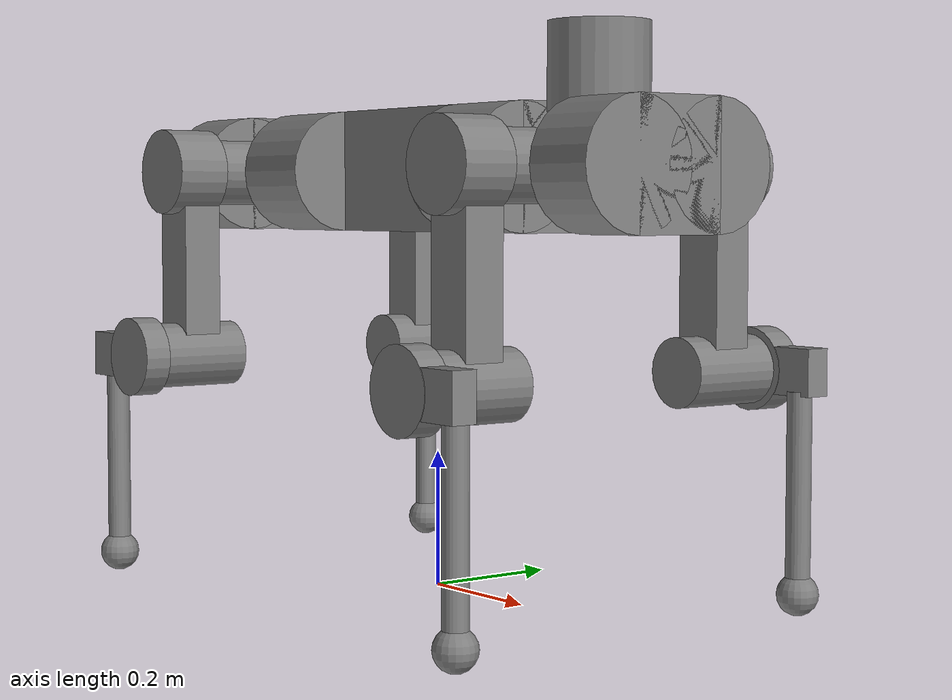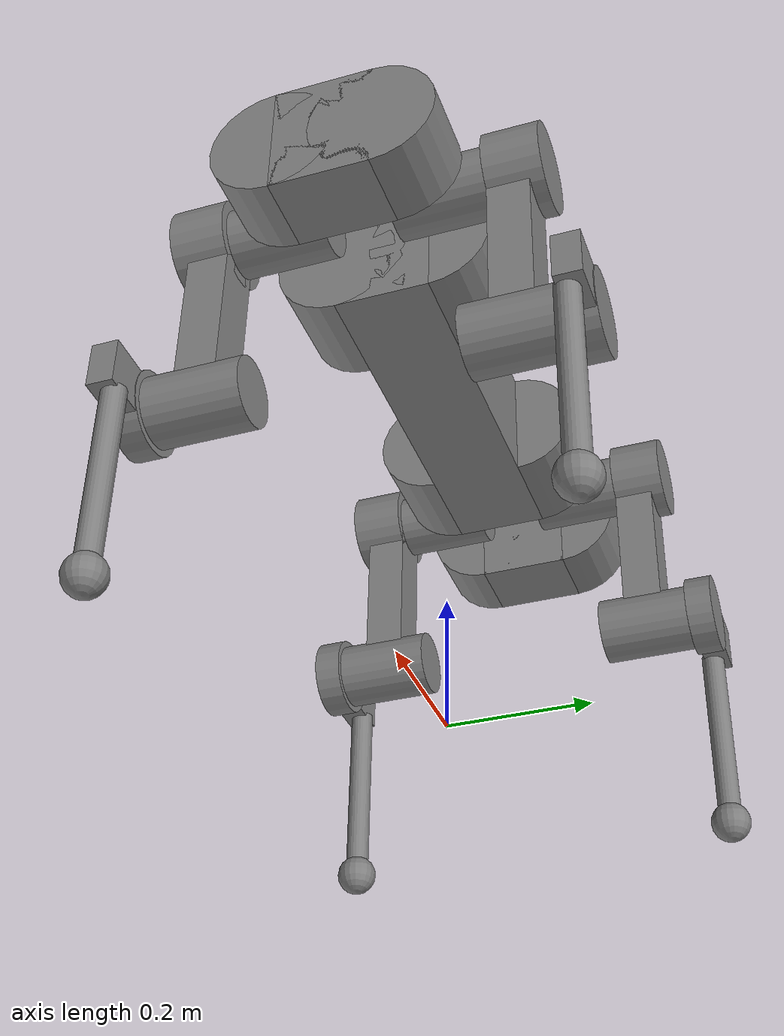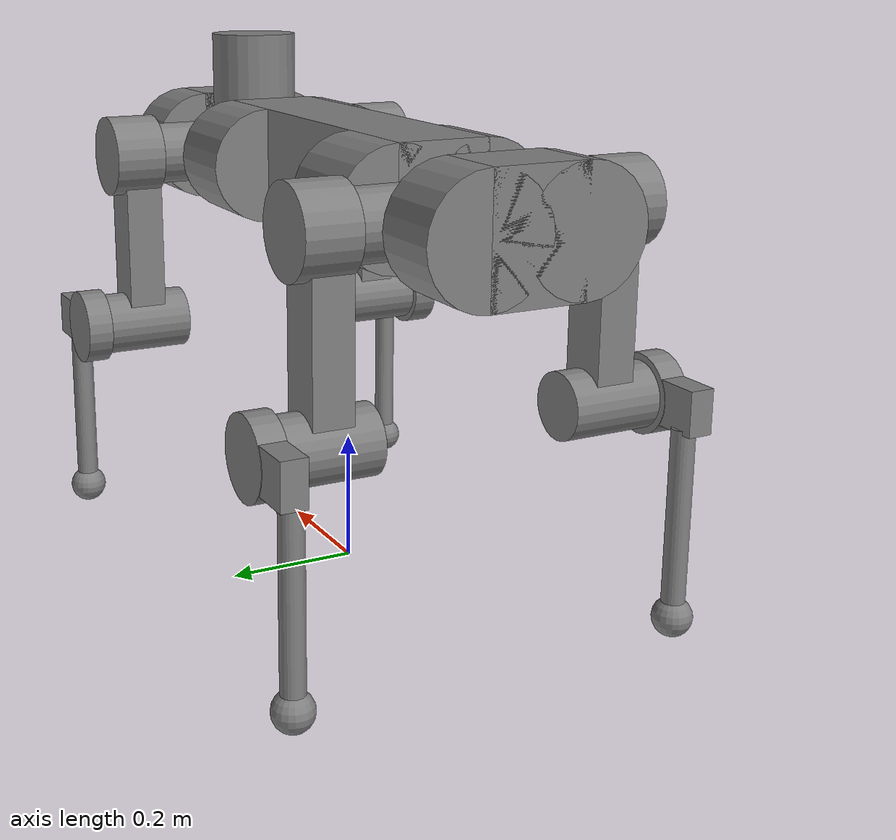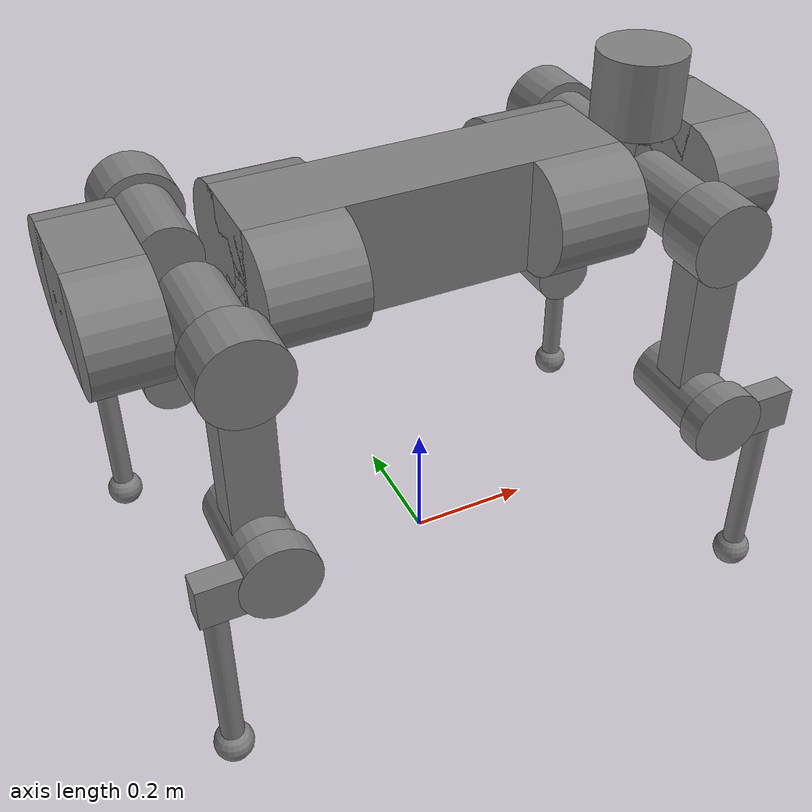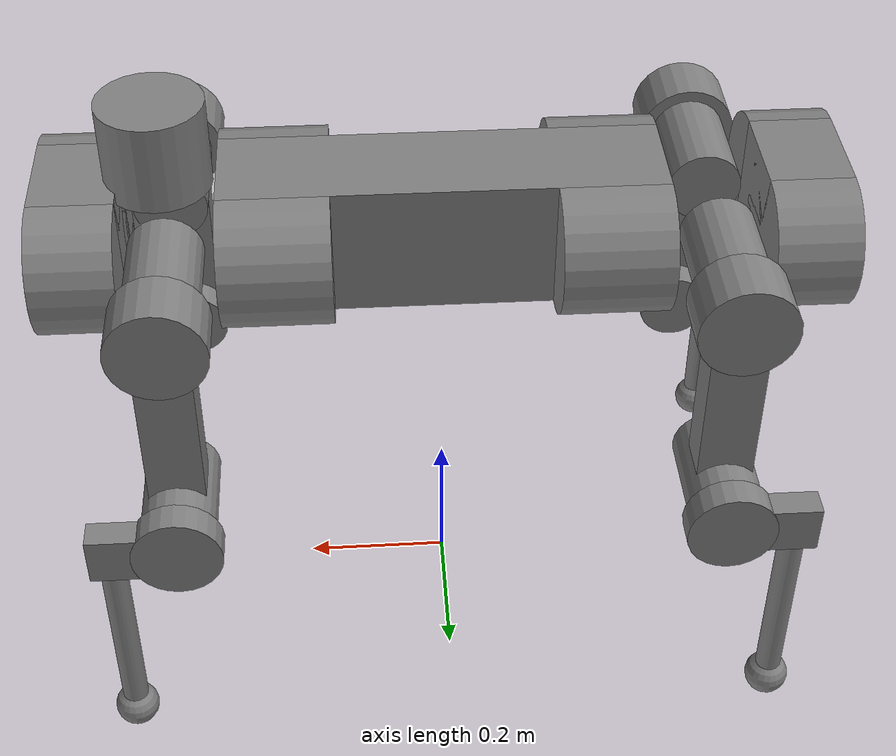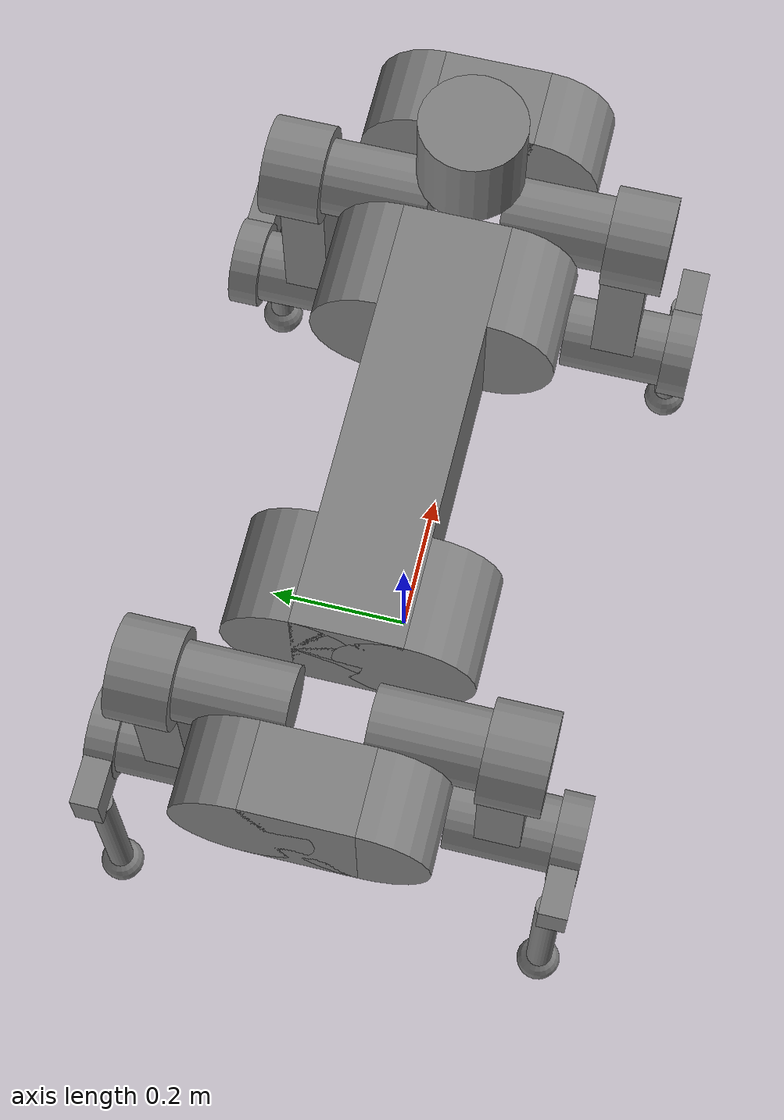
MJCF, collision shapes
<mujoco model="anymal_c">
  <compiler angle="radian" meshdir="assets" texturedir="assets" autolimits="true"/>

  <option cone="elliptic" impratio="100"/>

  <default>
    <material specular="0" shininess="0.25"/>
    <default class="anymal_c">
      <geom friction="0.4" margin="0.001" condim="1"/>
      <joint damping="1" frictionloss="0.1" armature="0.01"/>
      <motor ctrlrange="-80 80"/>

      <default class="visual">
        <geom type="mesh" contype="0" conaffinity="0" group="2" density="0"/>
        <default class="visual_zflip">
          <geom quat="0 0 0 1"/>
        </default>
      </default>
      <default class="collision">
        <geom group="3" type="cylinder"/>
        <default class="foot">
          <geom type="sphere" size="0.03" pos="0 0 0.02325" priority="1"
            solimp="0.015 1 0.03" condim="6" friction="0.8 0.02 0.01"/>
        </default>
      </default>

      <default class="anymal_c/haa">
        <joint range="-0.72 0.72"/>
        <motor ctrlrange="-80 80"/>
      </default>
      <default class="anymal_c/hfe">
        <joint range="-9.42478 9.42478"/>
        <motor ctrlrange="-80 80"/>
      </default>
      <default class="anymal_c/kfe">
        <joint range="-9.42478 9.42478"/>
        <motor ctrlrange="-80 80"/>
      </default>
    </default>
  </default>

  <asset>
    <material name="black_plastic"       rgba="0.007 0.007 0.007 1"/>
    <material name="green"               rgba="0.052 0.178 0.033 1"/>
    <material name="red"                 rgba="0.178 0.006 0.005 1"/>
    <material name="yellow"              rgba="0.178 0.119 0.006 1"/>
    <material name="lwl"                 rgba="0.8 0.8 0.8 1"/>
    <material name="base"                texture="base"/>
    <material name="top_shell"           texture="top_shell"/>
    <material name="bottom_shell"        texture="bottom_shell"/>
    <material name="hip_l"               texture="hip_l"/>
    <material name="thigh"               texture="thigh"/>
    <material name="shank_l"             texture="shank_l"/>
    <material name="foot"                texture="foot"/>
    <material name="hip_r"               texture="hip_r"/>
    <material name="shank"               texture="shank_r"/>
    <material name="hatch"               texture="hatch"/>
    <material name="remote"              texture="remote"/>
    <material name="handle"              texture="handle"/>
    <material name="face"                texture="face"/>
    <material name="depth_camera"        texture="depth_camera"/>
    <material name="wide_angle_camera"   texture="wide_angle_camera"/>
    <material name="battery"             texture="battery"/>
    <material name="lidar_cage"          texture="lidar_cage"/>
    <material name="lidar"               texture="lidar"/>
    <material name="drive"               texture="drive"/>

    <texture type="2d" name="base"               file="base.png"/>
    <texture type="2d" name="top_shell"          file="top_shell.png"/>
    <texture type="2d" name="bottom_shell"       file="bottom_shell.png"/>
    <texture type="2d" name="remote"             file="remote.png"/>
    <texture type="2d" name="hatch"              file="hatch.png"/>
    <texture type="2d" name="handle"             file="handle.png"/>
    <texture type="2d" name="face"               file="face.png"/>
    <texture type="2d" name="battery"            file="battery.png"/>
    <texture type="2d" name="lidar_cage"         file="lidar_cage.png"/>
    <texture type="2d" name="depth_camera"       file="depth_camera.png"/>
    <texture type="2d" name="wide_angle_camera"  file="wide_angle_camera.png"/>
    <texture type="2d" name="lidar"              file="lidar.png"/>
    <texture type="2d" name="drive"              file="drive.png"/>
    <texture type="2d" name="hip_l"              file="hip_l.png"/>
    <texture type="2d" name="shank_l"            file="shank_l.png"/>
    <texture type="2d" name="foot"               file="foot.png"/>
    <texture type="2d" name="thigh"              file="thigh.png"/>
    <texture type="2d" name="shank_r"            file="shank_r.png"/>
    <texture type="2d" name="hip_r"              file="hip_r.png"/>

    <mesh file="base_0.obj"/>
    <mesh file="base_1.obj"/>
    <mesh file="base_2.obj"/>
    <mesh file="base_3.obj"/>
    <mesh file="base_4.obj"/>
    <mesh file="base_5.obj"/>
    <mesh file="top_shell.obj"/>
    <mesh file="bottom_shell.obj"/>
    <mesh file="remote.obj"/>
    <mesh file="handle.obj"/>
    <mesh file="face.obj"/>
    <mesh file="wide_angle_camera.obj"/>
    <mesh file="depth_camera.obj"/>
    <mesh file="battery.obj"/>
    <mesh file="lidar_cage.obj"/>
    <mesh file="lidar.obj"/>
    <mesh file="drive.obj"/>
    <mesh file="hip_l.obj"/>
    <mesh file="thigh.obj"/>
    <mesh file="shank_l.obj"/>
    <mesh file="foot.obj"/>
    <mesh file="hip_r.obj"/>
    <mesh file="hatch.obj"/>
    <mesh file="shank_r.obj"/>
  </asset>

  <worldbody>
    <light name="spotlight" mode="targetbodycom" target="base" pos="0 -1 2" cutoff="30"/>

    <body name="base" pos="0 0 0.62" quat="0 0 0 1" childclass="anymal_c">
      <freejoint/>
      <inertial mass="19.2035" pos="0.0025 0 0.0502071"
        quat="0.5 0.5 0.5 0.5"
        diaginertia="0.639559 0.624031 0.217374"/>

      <!-- base visual geoms -->
      <geom mesh="base_0"       material="green"         class="visual"/>
      <geom mesh="base_1"       material="yellow"        class="visual"/>
      <geom mesh="base_2"       material="red"           class="visual"/>
      <geom mesh="base_3"       material="black_plastic" class="visual"/>
      <geom mesh="base_4"       material="lwl"           class="visual"/>
      <geom mesh="base_5"       material="base"          class="visual"/>
      <geom mesh="top_shell"    material="top_shell"     class="visual"/>
      <geom mesh="bottom_shell" material="bottom_shell"  class="visual"/>
      <geom mesh="remote"       material="remote"        class="visual"/>
      <geom mesh="handle"       material="handle"        class="visual"/>
      <geom mesh="battery"      material="battery"       class="visual"/>
      <geom mesh="hatch"        material="hatch"         pos="0.116 0 0.073" class="visual"/>
      <!-- face front -->
      <geom mesh="face"         material="face"          pos="0.4145 0 0"    class="visual"/>
      <geom mesh="depth_camera" material="depth_camera"  pos="0.46165 0 -0.0292"
        quat="0.965926 0 0.258819 0" class="visual"/>
      <geom mesh="wide_angle_camera" material="wide_angle_camera" pos="0.513 0 0.01497" class="visual"/>
      <!-- face rear -->
      <geom mesh="face"         material="face"          pos="-0.4145 0 0"   class="visual_zflip"/>
      <geom mesh="depth_camera" material="depth_camera"  pos="-0.46165 0 -0.0292"
        quat="0 -0.258819 0 0.965926" class="visual"/>
      <geom mesh="wide_angle_camera" material="wide_angle_camera" pos="-0.513 0 0.01497" class="visual_zflip"/>
      <!-- side cameras -->
      <geom mesh="depth_camera" material="depth_camera"  pos="0 0.07646 0.02905"
        quat="0.683013 -0.183013 0.183013 0.683013" class="visual"/>
      <geom mesh="depth_camera" material="depth_camera"  pos="0 -0.07646 0.02905"
        quat="0.683013 0.183013 0.183013 -0.683013" class="visual"/>
      <!-- lidar -->
      <geom mesh="lidar_cage"   material="lidar_cage"    pos="-0.364 0 0.0735"  class="visual"/>
      <geom mesh="lidar"        material="lidar"         pos="-0.364 0 0.1422"  quat="1 0 0 -1" class="visual"/>
      <!-- drives -->
      <geom mesh="drive" material="drive" pos="0.2999  0.104 0" quat="0.258819  0.965926 0 0"  class="visual"/>
      <geom mesh="drive" material="drive" pos="0.2999 -0.104 0" quat="0.258819 -0.965926 0 0"  class="visual"/>
      <geom mesh="drive" material="drive" pos="-0.2999  0.104 0" quat="0 0  0.965926 -0.258819" class="visual"/>
      <geom mesh="drive" material="drive" pos="-0.2999 -0.104 0" quat="0 0 -0.965926 -0.258819" class="visual"/>

      <!-- base collision -->
      <geom class="collision" size="0.29 0.07 0.09" type="box"/>
      <geom class="collision" size="0.09 0.0725" pos=" 0.2175  0.07 0" quat="1 0 1 0"/>
      <geom class="collision" size="0.09 0.0725" pos="-0.2175  0.07 0" quat="1 0 1 0"/>
      <geom class="collision" size="0.09 0.0725" pos=" 0.2175 -0.07 0" quat="1 0 1 0"/>
      <geom class="collision" size="0.09 0.0725" pos="-0.2175 -0.07 0" quat="1 0 1 0"/>
      <geom class="collision" size="0.055 0.07 0.09"  pos=" 0.4695 0 0" type="box"/>
      <geom class="collision" size="0.09 0.055"        pos=" 0.4695  0.07 0" quat="1 0 1 0"/>
      <geom class="collision" size="0.09 0.055"        pos=" 0.4695 -0.07 0" quat="1 0 1 0"/>
      <geom class="collision" size="0.055 0.07 0.09"  pos="-0.4695 0 0" quat="0 0 0 1" type="box"/>
      <geom class="collision" size="0.09 0.055"        pos="-0.4695 -0.07 0" quat="0 -1 0 1"/>
      <geom class="collision" size="0.09 0.055"        pos="-0.4695  0.07 0" quat="0 -1 0 1"/>
      <geom class="collision" size="0.07 0.06"         pos="-0.364 0 0.1335"/>

      <!-- ===================== LF LEG ===================== -->
      <body name="LF_HIP" pos="0.2999 0.104 0" quat="0.258819 0.965926 0 0">
        <inertial mass="2.781" pos="0.0566606 -0.015294 -0.00829784"
          quat="-0.127978 0.709783 -0.135278 0.679359"
          diaginertia="0.00585729 0.00491868 0.00329081"/>
        <joint name="LF_HAA" class="anymal_c/haa" type="hinge" axis="1 0 0"/>
        <geom mesh="hip_l" material="hip_l" quat="0.258819 -0.965926 0 0"                               class="visual"/>
        <geom mesh="drive" material="drive" pos="0.0599 -0.0725816 -0.041905"
          quat="0.183013 -0.683013 0.683013 0.183013"                                                    class="visual"/>
        <geom class="collision" size="0.05 0.07" pos="0.0599 -0.0119598 -0.006905"
          quat="-0.353553 -0.612372 0.612372 -0.353553"/>

        <body name="LF_THIGH" pos="0.0599 -0.0725816 -0.041905" quat="0.183013 -0.683013 0.683013 0.183013">
          <inertial mass="3.071" pos="0.0308147 4.64995e-05 -0.245696"
            quat="0.993166 -0.00515309 -0.0806592 0.0841972"
            diaginertia="0.03025 0.0298943 0.00418465"/>
          <joint name="LF_HFE" class="anymal_c/hfe" type="hinge" axis="1 0 0"/>
          <geom mesh="thigh" material="thigh" quat="1 0 0 -1"                                            class="visual"/>
          <geom mesh="drive" material="drive" pos="0.1003 0 -0.285"                                      class="visual"/>
          <geom class="collision" size="0.065 0.04"          pos="0.04 0 0"       quat="0.5 0.5 -0.5 -0.5"/>
          <geom class="collision" size="0.0375 0.03 0.141314" pos="0.03 0 -0.141314" quat="1 0 0 -1" type="box"/>
          <geom class="collision" size="0.05 0.07"           pos="0.0303 0 -0.285" quat="1 0 1 0"/>

          <body name="LF_SHANK" pos="0.1003 0 -0.285">
            <inertial mass="0.58842" pos="0.005462 -0.0612528 -0.0806598"
              quat="0.992934 -0.115904 -0.00105487 -0.0254421"
              diaginertia="0.0101637 0.00923838 0.00111927"/>
            <joint name="LF_KFE" class="anymal_c/kfe" type="hinge" axis="1 0 0"/>
            <geom mesh="shank_l" material="shank_l" quat="1 0 0 -1"                                     class="visual"/>
            <geom mesh="foot"    material="foot"    pos="0.01305 -0.08795 -0.33797"
              quat="0.382683 0 0 -0.92388"                                                                class="visual"/>
            <geom class="collision" size="0.06 0.02"          pos="0.02 0 0"              quat="0.5 0.5 -0.5 -0.5"/>
            <geom class="collision" size="0.057499 0.03375 0.019" pos="0.02 -0.057499 0"
              quat="0.5 0.5 -0.5 -0.5" type="box"/>
            <geom class="collision" size="0.0175 0.141252"    pos="0.01305 -0.08795 -0.168985" quat="1 0 0 -1"/>
            <geom class="foot"                                 pos="0.01305 -0.08795 -0.31547"  quat="1 0 0 -1"/>
            <site name="LF_FOOT" pos="0.01305 -0.08795 -0.31547" size="0.01" rgba="1 0 0 1"/>
          </body>
        </body>
      </body>

      <!-- ===================== RF LEG ===================== -->
      <body name="RF_HIP" pos="0.2999 -0.104 0" quat="0.258819 -0.965926 0 0">
        <inertial mass="2.781" pos="0.0567633 0.015294 -0.00829784"
          quat="0.13524 0.679072 0.127985 0.710065"
          diaginertia="0.00585928 0.0049205 0.00329064"/>
        <joint name="RF_HAA" class="anymal_c/haa" type="hinge" axis="1 0 0"/>
        <geom mesh="hip_r" material="hip_r" quat="0.258819 0.965926 0 0"                                 class="visual"/>
        <geom mesh="drive" material="drive" pos="0.0599 0.0725816 -0.041905"
          quat="0.183013 0.683013 0.683013 -0.183013"                                                    class="visual"/>
        <geom class="collision" size="0.05 0.07" pos="0.0599 0.0119598 -0.006905"
          quat="-0.353553 0.612372 0.612372 0.353553"/>

        <body name="RF_THIGH" pos="0.0599 0.0725816 -0.041905" quat="0.183013 0.683013 0.683013 -0.183013">
          <inertial mass="3.071" pos="0.0308147 4.64995e-05 -0.245696"
            quat="0.992775 -0.00512735 -0.0806685 0.0886811"
            diaginertia="0.0302511 0.0298933 0.0041845"/>
          <joint name="RF_HFE" class="anymal_c/hfe" type="hinge" axis="1 0 0"/>
          <geom mesh="thigh" material="thigh" quat="1 0 0 -1"                                            class="visual"/>
          <geom mesh="drive" material="drive" pos="0.1003 0 -0.285"                                      class="visual"/>
          <geom class="collision" size="0.065 0.04"           pos="0.04 0 0"        quat="0.5 0.5 0.5 0.5"/>
          <geom class="collision" size="0.0375 0.03 0.141314" pos="0.03 0 -0.141314" quat="1 0 0 1" type="box"/>
          <geom class="collision" size="0.05 0.07"            pos="0.0303 0 -0.285" quat="1 0 1 0"/>

          <body name="RF_SHANK" pos="0.1003 0 -0.285">
            <inertial mass="0.58842" pos="0.005462 0.0612528 -0.0806598"
              quat="0.992934 0.115904 -0.00105487 0.0254421"
              diaginertia="0.0101637 0.00923838 0.00111927"/>
            <joint name="RF_KFE" class="anymal_c/kfe" type="hinge" axis="1 0 0"/>
            <geom mesh="shank_r" material="shank" quat="1 0 0 1"                                         class="visual"/>
            <geom mesh="foot"    material="foot"  pos="0.01305 0.08795 -0.33797"
              quat="0.382683 0 0 0.92388"                                                                  class="visual"/>
            <geom class="collision" size="0.06 0.02"           pos="0.02 0 0"             quat="0.5 0.5 0.5 0.5"/>
            <geom class="collision" size="0.057499 0.03375 0.019" pos="0.02 0.057499 0"
              quat="0.5 0.5 0.5 0.5" type="box"/>
            <geom class="collision" size="0.0175 0.141252"     pos="0.01305 0.08795 -0.168985" quat="1 0 0 1"/>
            <geom class="foot"                                  pos="0.01305 0.08795 -0.31547"  quat="1 0 0 1"/>
            <site name="RF_FOOT" pos="0.01305 0.08795 -0.31547" size="0.01" rgba="1 0 0 1"/>
          </body>
        </body>
      </body>

      <!-- ===================== LH LEG ===================== -->
      <body name="LH_HIP" pos="-0.2999 0.104 0" quat="0 0 0.965926 -0.258819">
        <inertial mass="2.781" pos="0.0567633 0.015294 -0.00829784"
          quat="0.13524 0.679072 0.127985 0.710065"
          diaginertia="0.00585928 0.0049205 0.00329064"/>
        <joint name="LH_HAA" class="anymal_c/haa" type="hinge" axis="1 0 0"/>
        <geom mesh="hip_r" material="hip_r" quat="-0.258819 -0.965926 0 0"                               class="visual"/>
        <geom mesh="drive" material="drive" pos="0.0599 0.0725816 -0.041905"
          quat="0.183013 0.683013 0.683013 -0.183013"                                                    class="visual"/>
        <geom class="collision" size="0.05 0.07" pos="0.0599 0.0119598 -0.006905"
          quat="-0.353553 0.612372 0.612372 0.353553"/>

        <body name="LH_THIGH" pos="0.0599 0.0725816 -0.041905" quat="0.183013 0.683013 0.683013 -0.183013">
          <inertial mass="3.071" pos="0.0308147 4.64995e-05 -0.245696"
            quat="0.992775 -0.00512735 -0.0806685 0.0886811"
            diaginertia="0.0302511 0.0298933 0.0041845"/>
          <joint name="LH_HFE" class="anymal_c/hfe" type="hinge" axis="1 0 0"/>
          <geom mesh="thigh" material="thigh" quat="1 0 0 -1"                                            class="visual"/>
          <geom mesh="drive" material="drive" pos="0.1003 0 -0.285"                                      class="visual"/>
          <geom class="collision" size="0.065 0.04"           pos="0.04 0 0"        quat="0.5 0.5 -0.5 -0.5"/>
          <geom class="collision" size="0.0375 0.03 0.141314" pos="0.03 0 -0.141314" quat="1 0 0 -1" type="box"/>
          <geom class="collision" size="0.05 0.07"            pos="0.0303 0 -0.285" quat="1 0 1 0"/>

          <body name="LH_SHANK" pos="0.1003 0 -0.285">
            <inertial mass="0.58842" pos="0.005462 0.0612528 -0.0806598"
              quat="0.992934 0.115904 -0.00105487 0.0254421"
              diaginertia="0.0101637 0.00923838 0.00111927"/>
            <joint name="LH_KFE" class="anymal_c/kfe" type="hinge" axis="1 0 0"/>
            <geom mesh="shank_r" material="shank" quat="-1 0 0 -1"                                       class="visual"/>
            <geom mesh="foot"    material="foot"  pos="0.01305 0.08795 -0.33797"
              quat="-0.382683 0 0 -0.92388"                                                               class="visual"/>
            <geom class="collision" size="0.06 0.02"           pos="0.02 0 0"             quat="0.5 0.5 -0.5 -0.5"/>
            <geom class="collision" size="0.057499 0.03375 0.019" pos="0.02 0.057499 0"
              quat="0.5 0.5 -0.5 -0.5" type="box"/>
            <geom class="collision" size="0.0175 0.141252"     pos="0.01305 0.08795 -0.168985" quat="1 0 0 -1"/>
            <geom class="foot"                                  pos="0.01305 0.08795 -0.31547"  quat="1 0 0 -1"/>
            <site name="LH_FOOT" pos="0.01305 0.08795 -0.31547" size="0.01" rgba="1 0 0 1"/>
          </body>
        </body>
      </body>

      <!-- ===================== RH LEG ===================== -->
      <body name="RH_HIP" pos="-0.2999 -0.104 0" quat="0 0 -0.965926 -0.258819">
        <inertial mass="2.781" pos="0.0566606 -0.015294 -0.00829784"
          quat="-0.127978 0.709783 -0.135278 0.679359"
          diaginertia="0.00585729 0.00491868 0.00329081"/>
        <joint name="RH_HAA" class="anymal_c/haa" type="hinge" axis="1 0 0"/>
        <geom mesh="hip_l" material="hip_l" quat="-0.258819 0.965926 0 0"                                class="visual"/>
        <geom mesh="drive" material="drive" pos="0.0599 -0.0725816 -0.041905"
          quat="-0.183013 0.683013 -0.683013 -0.183013"                                                  class="visual"/>
        <geom class="collision" size="0.05 0.07" pos="0.0599 -0.0119598 -0.006905"
          quat="0.353553 0.612372 -0.612372 0.353553"/>

        <body name="RH_THIGH" pos="0.0599 -0.0725816 -0.041905" quat="-0.183013 0.683013 -0.683013 -0.183013">
          <inertial mass="3.071" pos="0.0308147 4.64995e-05 -0.245696"
            quat="0.993166 -0.00515309 -0.0806592 0.0841972"
            diaginertia="0.03025 0.0298943 0.00418465"/>
          <joint name="RH_HFE" class="anymal_c/hfe" type="hinge" axis="1 0 0"/>
          <geom mesh="thigh" material="thigh" quat="1 0 0 -1"                                            class="visual"/>
          <geom mesh="drive" material="drive" pos="0.1003 0 -0.285"                                      class="visual"/>
          <geom class="collision" size="0.065 0.04"           pos="0.04 0 0"        quat="0.5 0.5 0.5 0.5"/>
          <geom class="collision" size="0.0375 0.03 0.141314" pos="0.03 0 -0.141314" quat="1 0 0 1" type="box"/>
          <geom class="collision" size="0.05 0.07"            pos="0.0303 0 -0.285" quat="1 0 1 0"/>

          <body name="RH_SHANK" pos="0.1003 0 -0.285">
            <inertial mass="0.58842" pos="0.005462 -0.0612528 -0.0806598"
              quat="0.992934 -0.115904 -0.00105487 -0.0254421"
              diaginertia="0.0101637 0.00923838 0.00111927"/>
            <joint name="RH_KFE" class="anymal_c/kfe" type="hinge" axis="1 0 0"/>
            <geom mesh="shank_l" material="shank_l" quat="1 0 0 -1"                                      class="visual"/>
            <geom mesh="foot"    material="foot"    pos="0.01305 -0.08795 -0.33797"
              quat="0.382683 0 0 -0.92388"                                                                 class="visual"/>
            <geom class="collision" size="0.06 0.02"           pos="0.02 0 0"              quat="0.5 0.5 0.5 0.5"/>
            <geom class="collision" size="0.057499 0.03375 0.019" pos="0.02 -0.057499 0"
              quat="0.5 0.5 0.5 0.5" type="box"/>
            <geom class="collision" size="0.0175 0.141252"     pos="0.01305 -0.08795 -0.168985" quat="1 0 0 1"/>
            <geom class="foot"                                  pos="0.01305 -0.08795 -0.31547"  quat="1 0 0 1"/>
            <site name="RH_FOOT" pos="0.01305 -0.08795 -0.31547" size="0.01" rgba="1 0 0 1"/>
          </body>
        </body>
      </body>

    </body>
  </worldbody>

  <contact>
    <exclude body1="base" body2="LF_THIGH"/>
    <exclude body1="base" body2="RF_THIGH"/>
    <exclude body1="base" body2="LH_THIGH"/>
    <exclude body1="base" body2="RH_THIGH"/>
  </contact>

  <actuator>
    <motor name="LF_HAA" joint="LF_HAA" gear="1" class="anymal_c/haa"/>
    <motor name="LF_HFE" joint="LF_HFE" gear="1" class="anymal_c/hfe"/>
    <motor name="LF_KFE" joint="LF_KFE" gear="1" class="anymal_c/kfe"/>

    <motor name="RF_HAA" joint="RF_HAA" gear="1" class="anymal_c/haa"/>
    <motor name="RF_HFE" joint="RF_HFE" gear="1" class="anymal_c/hfe"/>
    <motor name="RF_KFE" joint="RF_KFE" gear="1" class="anymal_c/kfe"/>

    <motor name="LH_HAA" joint="LH_HAA" gear="1" class="anymal_c/haa"/>
    <motor name="LH_HFE" joint="LH_HFE" gear="1" class="anymal_c/hfe"/>
    <motor name="LH_KFE" joint="LH_KFE" gear="1" class="anymal_c/kfe"/>

    <motor name="RH_HAA" joint="RH_HAA" gear="1" class="anymal_c/haa"/>
    <motor name="RH_HFE" joint="RH_HFE" gear="1" class="anymal_c/hfe"/>
    <motor name="RH_KFE" joint="RH_KFE" gear="1" class="anymal_c/kfe"/>
  </actuator>

</mujoco>
